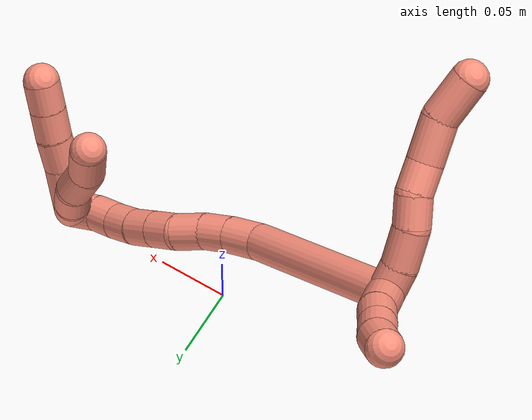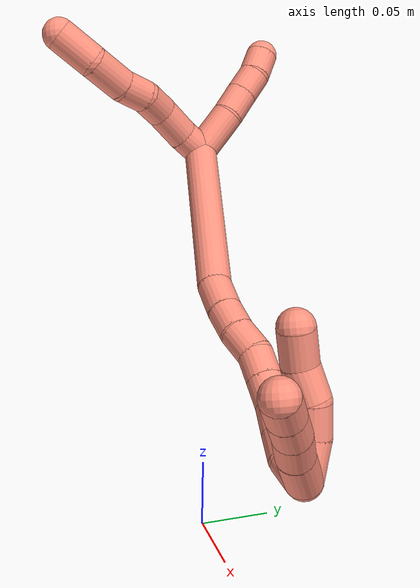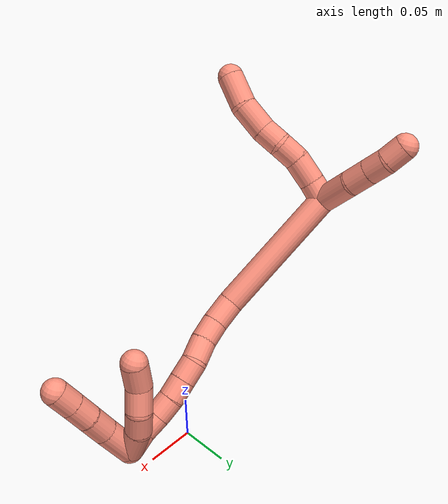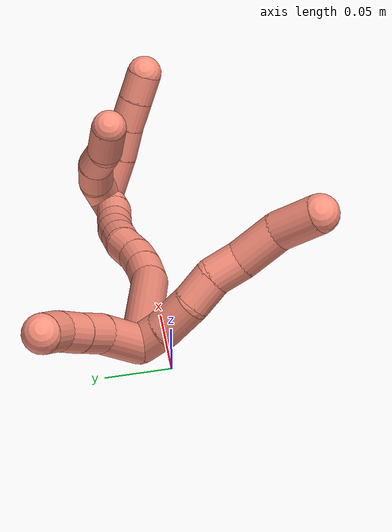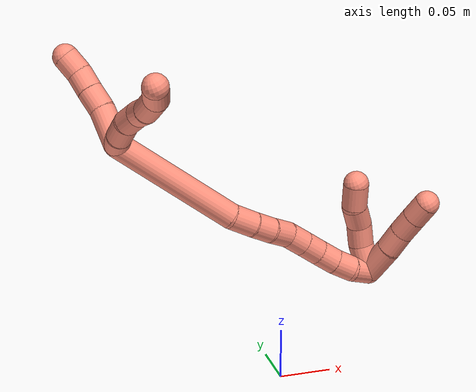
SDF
<sdf version="1.7">
 <world name="default">
  <model name="16">
   <static>0</static>
   <link name="16">
    <collision name="collision-cylinder-e_1_2_8">
     <pose>0.0026 -0.007364 0.006313 0.862083 0.261932 0.121003</pose>
     <geometry><cylinder><radius>0.0125</radius><length>0.020084</length></cylinder></geometry>
     <surface>
      <friction><ode><mu>1.16</mu><mu2>1.16</mu2><slip1>0</slip1><slip2>0</slip2></ode></friction>
      <contact><ode><kp>1e+06</kp><kd>1</kd><max_vel>0</max_vel><min_depth>0.001</min_depth></ode></contact>
     </surface>
    </collision>
    <visual name="visual-cylinder-e_1_2_8">
     <pose>0.0026 -0.007364 0.006313 0.862083 0.261932 0.121003</pose>
     <geometry><cylinder><radius>0.0125</radius><length>0.020084</length></cylinder></geometry>
     <material><ambient>1 0.576471 0.494118 1</ambient></material>
    </visual>
    <collision name="collision-cylinder-e_2_8_9">
     <pose>0.010747 -0.023678 0.020893 0.825067 0.427174 0.18928</pose>
     <geometry><cylinder><radius>0.0125</radius><length>0.026773</length></cylinder></geometry>
     <surface>
      <friction><ode><mu>1.16</mu><mu2>1.16</mu2><slip1>0</slip1><slip2>0</slip2></ode></friction>
      <contact><ode><kp>1e+06</kp><kd>1</kd><max_vel>0</max_vel><min_depth>0.001</min_depth></ode></contact>
     </surface>
    </collision>
    <visual name="visual-cylinder-e_2_8_9">
     <pose>0.010747 -0.023678 0.020893 0.825067 0.427174 0.18928</pose>
     <geometry><cylinder><radius>0.0125</radius><length>0.026773</length></cylinder></geometry>
     <material><ambient>1 0.576471 0.494118 1</ambient></material>
    </visual>
    <collision name="collision-cylinder-e_3_9_10">
     <pose>0.022775 -0.039786 0.03377 0.998518 0.650719 0.363871</pose>
     <geometry><cylinder><radius>0.0125</radius><length>0.021403</length></cylinder></geometry>
     <surface>
      <friction><ode><mu>1.16</mu><mu2>1.16</mu2><slip1>0</slip1><slip2>0</slip2></ode></friction>
      <contact><ode><kp>1e+06</kp><kd>1</kd><max_vel>0</max_vel><min_depth>0.001</min_depth></ode></contact>
     </surface>
    </collision>
    <visual name="visual-cylinder-e_3_9_10">
     <pose>0.022775 -0.039786 0.03377 0.998518 0.650719 0.363871</pose>
     <geometry><cylinder><radius>0.0125</radius><length>0.021403</length></cylinder></geometry>
     <material><ambient>1 0.576471 0.494118 1</ambient></material>
    </visual>
    <collision name="collision-cylinder-e_4_10_11">
     <pose>0.033046 -0.055957 0.042001 1.18894 0.371913 0.253012</pose>
     <geometry><cylinder><radius>0.0125</radius><length>0.02085</length></cylinder></geometry>
     <surface>
      <friction><ode><mu>1.16</mu><mu2>1.16</mu2><slip1>0</slip1><slip2>0</slip2></ode></friction>
      <contact><ode><kp>1e+06</kp><kd>1</kd><max_vel>0</max_vel><min_depth>0.001</min_depth></ode></contact>
     </surface>
    </collision>
    <visual name="visual-cylinder-e_4_10_11">
     <pose>0.033046 -0.055957 0.042001 1.18894 0.371913 0.253012</pose>
     <geometry><cylinder><radius>0.0125</radius><length>0.02085</length></cylinder></geometry>
     <material><ambient>1 0.576471 0.494118 1</ambient></material>
    </visual>
    <collision name="collision-cylinder-e_5_11_12">
     <pose>0.042619 -0.07619 0.0534 0.964562 0.400722 0.211841</pose>
     <geometry><cylinder><radius>0.0125</radius><length>0.029657</length></cylinder></geometry>
     <surface>
      <friction><ode><mu>1.16</mu><mu2>1.16</mu2><slip1>0</slip1><slip2>0</slip2></ode></friction>
      <contact><ode><kp>1e+06</kp><kd>1</kd><max_vel>0</max_vel><min_depth>0.001</min_depth></ode></contact>
     </surface>
    </collision>
    <visual name="visual-cylinder-e_5_11_12">
     <pose>0.042619 -0.07619 0.0534 0.964562 0.400722 0.211841</pose>
     <geometry><cylinder><radius>0.0125</radius><length>0.029657</length></cylinder></geometry>
     <material><ambient>1 0.576471 0.494118 1</ambient></material>
    </visual>
    <collision name="collision-cylinder-e_6_12_6">
     <pose>0.049766 -0.099215 0.071312 0.861419 0.087343 0.040152</pose>
     <geometry><cylinder><radius>0.0125</radius><length>0.031233</length></cylinder></geometry>
     <surface>
      <friction><ode><mu>1.16</mu><mu2>1.16</mu2><slip1>0</slip1><slip2>0</slip2></ode></friction>
      <contact><ode><kp>1e+06</kp><kd>1</kd><max_vel>0</max_vel><min_depth>0.001</min_depth></ode></contact>
     </surface>
    </collision>
    <visual name="visual-cylinder-e_6_12_6">
     <pose>0.049766 -0.099215 0.071312 0.861419 0.087343 0.040152</pose>
     <geometry><cylinder><radius>0.0125</radius><length>0.031233</length></cylinder></geometry>
     <material><ambient>1 0.576471 0.494118 1</ambient></material>
    </visual>
    <collision name="collision-cylinder-e_1_2_13">
     <pose>0.000875 0.012328 0.014022 -0.721212 0.046833 -0.017663</pose>
     <geometry><cylinder><radius>0.0125</radius><length>0.037383</length></cylinder></geometry>
     <surface>
      <friction><ode><mu>1.16</mu><mu2>1.16</mu2><slip1>0</slip1><slip2>0</slip2></ode></friction>
      <contact><ode><kp>1e+06</kp><kd>1</kd><max_vel>0</max_vel><min_depth>0.001</min_depth></ode></contact>
     </surface>
    </collision>
    <visual name="visual-cylinder-e_1_2_13">
     <pose>0.000875 0.012328 0.014022 -0.721212 0.046833 -0.017663</pose>
     <geometry><cylinder><radius>0.0125</radius><length>0.037383</length></cylinder></geometry>
     <material><ambient>1 0.576471 0.494118 1</ambient></material>
    </visual>
    <collision name="collision-cylinder-e_2_13_14">
     <pose>0.000264 0.031437 0.036651 -0.667245 -0.134782 0.046775</pose>
     <geometry><cylinder><radius>0.0125</radius><length>0.022113</length></cylinder></geometry>
     <surface>
      <friction><ode><mu>1.16</mu><mu2>1.16</mu2><slip1>0</slip1><slip2>0</slip2></ode></friction>
      <contact><ode><kp>1e+06</kp><kd>1</kd><max_vel>0</max_vel><min_depth>0.001</min_depth></ode></contact>
     </surface>
    </collision>
    <visual name="visual-cylinder-e_2_13_14">
     <pose>0.000264 0.031437 0.036651 -0.667245 -0.134782 0.046775</pose>
     <geometry><cylinder><radius>0.0125</radius><length>0.022113</length></cylinder></geometry>
     <material><ambient>1 0.576471 0.494118 1</ambient></material>
    </visual>
    <collision name="collision-cylinder-e_3_14_15">
     <pose>-0.002162 0.044583 0.05307 -0.68377 -0.093044 0.033131</pose>
     <geometry><cylinder><radius>0.0125</radius><length>0.020243</length></cylinder></geometry>
     <surface>
      <friction><ode><mu>1.16</mu><mu2>1.16</mu2><slip1>0</slip1><slip2>0</slip2></ode></friction>
      <contact><ode><kp>1e+06</kp><kd>1</kd><max_vel>0</max_vel><min_depth>0.001</min_depth></ode></contact>
     </surface>
    </collision>
    <visual name="visual-cylinder-e_3_14_15">
     <pose>-0.002162 0.044583 0.05307 -0.68377 -0.093044 0.033131</pose>
     <geometry><cylinder><radius>0.0125</radius><length>0.020243</length></cylinder></geometry>
     <material><ambient>1 0.576471 0.494118 1</ambient></material>
    </visual>
    <collision name="collision-cylinder-e_4_15_5">
     <pose>-0.005754 0.055601 0.069481 -0.495829 -0.264886 0.067418</pose>
     <geometry><cylinder><radius>0.0125</radius><length>0.02026</length></cylinder></geometry>
     <surface>
      <friction><ode><mu>1.16</mu><mu2>1.16</mu2><slip1>0</slip1><slip2>0</slip2></ode></friction>
      <contact><ode><kp>1e+06</kp><kd>1</kd><max_vel>0</max_vel><min_depth>0.001</min_depth></ode></contact>
     </surface>
    </collision>
    <visual name="visual-cylinder-e_4_15_5">
     <pose>-0.005754 0.055601 0.069481 -0.495829 -0.264886 0.067418</pose>
     <geometry><cylinder><radius>0.0125</radius><length>0.02026</length></cylinder></geometry>
     <material><ambient>1 0.576471 0.494118 1</ambient></material>
    </visual>
    <collision name="collision-cylinder-e_1_2_16">
     <pose>0.035076 -0.007607 -0.055396 3.00512 0.560256 2.67513</pose>
     <geometry><cylinder><radius>0.0125</radius><length>0.132013</length></cylinder></geometry>
     <surface>
      <friction><ode><mu>1.16</mu><mu2>1.16</mu2><slip1>0</slip1><slip2>0</slip2></ode></friction>
      <contact><ode><kp>1e+06</kp><kd>1</kd><max_vel>0</max_vel><min_depth>0.001</min_depth></ode></contact>
     </surface>
    </collision>
    <visual name="visual-cylinder-e_1_2_16">
     <pose>0.035076 -0.007607 -0.055396 3.00512 0.560256 2.67513</pose>
     <geometry><cylinder><radius>0.0125</radius><length>0.132013</length></cylinder></geometry>
     <material><ambient>1 0.576471 0.494118 1</ambient></material>
    </visual>
    <collision name="collision-cylinder-e_2_16_17">
     <pose>0.078229 -0.01426 -0.12019 -3.04042 0.707364 -2.86904</pose>
     <geometry><cylinder><radius>0.0125</radius><length>0.024858</length></cylinder></geometry>
     <surface>
      <friction><ode><mu>1.16</mu><mu2>1.16</mu2><slip1>0</slip1><slip2>0</slip2></ode></friction>
      <contact><ode><kp>1e+06</kp><kd>1</kd><max_vel>0</max_vel><min_depth>0.001</min_depth></ode></contact>
     </surface>
    </collision>
    <visual name="visual-cylinder-e_2_16_17">
     <pose>0.078229 -0.01426 -0.12019 -3.04042 0.707364 -2.86904</pose>
     <geometry><cylinder><radius>0.0125</radius><length>0.024858</length></cylinder></geometry>
     <material><ambient>1 0.576471 0.494118 1</ambient></material>
    </visual>
    <collision name="collision-cylinder-e_3_17_18">
     <pose>0.092995 -0.011396 -0.137294 -2.89858 0.700172 -2.49614</pose>
     <geometry><cylinder><radius>0.0125</radius><length>0.020761</length></cylinder></geometry>
     <surface>
      <friction><ode><mu>1.16</mu><mu2>1.16</mu2><slip1>0</slip1><slip2>0</slip2></ode></friction>
      <contact><ode><kp>1e+06</kp><kd>1</kd><max_vel>0</max_vel><min_depth>0.001</min_depth></ode></contact>
     </surface>
    </collision>
    <visual name="visual-cylinder-e_3_17_18">
     <pose>0.092995 -0.011396 -0.137294 -2.89858 0.700172 -2.49614</pose>
     <geometry><cylinder><radius>0.0125</radius><length>0.020761</length></cylinder></geometry>
     <material><ambient>1 0.576471 0.494118 1</ambient></material>
    </visual>
    <collision name="collision-cylinder-e_4_18_19">
     <pose>0.106505 -0.005633 -0.152931 -2.68946 0.658409 -1.95652</pose>
     <geometry><cylinder><radius>0.0125</radius><length>0.022297</length></cylinder></geometry>
     <surface>
      <friction><ode><mu>1.16</mu><mu2>1.16</mu2><slip1>0</slip1><slip2>0</slip2></ode></friction>
      <contact><ode><kp>1e+06</kp><kd>1</kd><max_vel>0</max_vel><min_depth>0.001</min_depth></ode></contact>
     </surface>
    </collision>
    <visual name="visual-cylinder-e_4_18_19">
     <pose>0.106505 -0.005633 -0.152931 -2.68946 0.658409 -1.95652</pose>
     <geometry><cylinder><radius>0.0125</radius><length>0.022297</length></cylinder></geometry>
     <material><ambient>1 0.576471 0.494118 1</ambient></material>
    </visual>
    <collision name="collision-cylinder-e_5_19_20">
     <pose>0.118642 -0.000894 -0.169312 -3.03703 0.559117 -2.78098</pose>
     <geometry><cylinder><radius>0.0125</radius><length>0.020043</length></cylinder></geometry>
     <surface>
      <friction><ode><mu>1.16</mu><mu2>1.16</mu2><slip1>0</slip1><slip2>0</slip2></ode></friction>
      <contact><ode><kp>1e+06</kp><kd>1</kd><max_vel>0</max_vel><min_depth>0.001</min_depth></ode></contact>
     </surface>
    </collision>
    <visual name="visual-cylinder-e_5_19_20">
     <pose>0.118642 -0.000894 -0.169312 -3.03703 0.559117 -2.78098</pose>
     <geometry><cylinder><radius>0.0125</radius><length>0.020043</length></cylinder></geometry>
     <material><ambient>1 0.576471 0.494118 1</ambient></material>
    </visual>
    <collision name="collision-cylinder-e_6_20_21">
     <pose>0.129173 0.000897 -0.186249 -3.03548 0.548489 -2.76844</pose>
     <geometry><cylinder><radius>0.0125</radius><length>0.020006</length></cylinder></geometry>
     <surface>
      <friction><ode><mu>1.16</mu><mu2>1.16</mu2><slip1>0</slip1><slip2>0</slip2></ode></friction>
      <contact><ode><kp>1e+06</kp><kd>1</kd><max_vel>0</max_vel><min_depth>0.001</min_depth></ode></contact>
     </surface>
    </collision>
    <visual name="visual-cylinder-e_6_20_21">
     <pose>0.129173 0.000897 -0.186249 -3.03548 0.548489 -2.76844</pose>
     <geometry><cylinder><radius>0.0125</radius><length>0.020006</length></cylinder></geometry>
     <material><ambient>1 0.576471 0.494118 1</ambient></material>
    </visual>
    <collision name="collision-cylinder-e_7_21_22">
     <pose>0.139935 0.00144 -0.203054 3.09831 0.587729 2.99878</pose>
     <geometry><cylinder><radius>0.0125</radius><length>0.020008</length></cylinder></geometry>
     <surface>
      <friction><ode><mu>1.16</mu><mu2>1.16</mu2><slip1>0</slip1><slip2>0</slip2></ode></friction>
      <contact><ode><kp>1e+06</kp><kd>1</kd><max_vel>0</max_vel><min_depth>0.001</min_depth></ode></contact>
     </surface>
    </collision>
    <visual name="visual-cylinder-e_7_21_22">
     <pose>0.139935 0.00144 -0.203054 3.09831 0.587729 2.99878</pose>
     <geometry><cylinder><radius>0.0125</radius><length>0.020008</length></cylinder></geometry>
     <material><ambient>1 0.576471 0.494118 1</ambient></material>
    </visual>
    <collision name="collision-cylinder-e_8_22_23">
     <pose>0.151973 0.000641 -0.218973 3.08391 0.705895 2.98529</pose>
     <geometry><cylinder><radius>0.0125</radius><length>0.02001</length></cylinder></geometry>
     <surface>
      <friction><ode><mu>1.16</mu><mu2>1.16</mu2><slip1>0</slip1><slip2>0</slip2></ode></friction>
      <contact><ode><kp>1e+06</kp><kd>1</kd><max_vel>0</max_vel><min_depth>0.001</min_depth></ode></contact>
     </surface>
    </collision>
    <visual name="visual-cylinder-e_8_22_23">
     <pose>0.151973 0.000641 -0.218973 3.08391 0.705895 2.98529</pose>
     <geometry><cylinder><radius>0.0125</radius><length>0.02001</length></cylinder></geometry>
     <material><ambient>1 0.576471 0.494118 1</ambient></material>
    </visual>
    <collision name="collision-cylinder-e_9_23_1">
     <pose>0.165824 0.00265 -0.232888 -2.7718 0.827089 -2.33583</pose>
     <geometry><cylinder><radius>0.0125</radius><length>0.020004</length></cylinder></geometry>
     <surface>
      <friction><ode><mu>1.16</mu><mu2>1.16</mu2><slip1>0</slip1><slip2>0</slip2></ode></friction>
      <contact><ode><kp>1e+06</kp><kd>1</kd><max_vel>0</max_vel><min_depth>0.001</min_depth></ode></contact>
     </surface>
    </collision>
    <visual name="visual-cylinder-e_9_23_1">
     <pose>0.165824 0.00265 -0.232888 -2.7718 0.827089 -2.33583</pose>
     <geometry><cylinder><radius>0.0125</radius><length>0.020004</length></cylinder></geometry>
     <material><ambient>1 0.576471 0.494118 1</ambient></material>
    </visual>
    <collision name="collision-cylinder-e_1_1_24">
     <pose>0.175142 0.008562 -0.225571 -0.248949 0.138276 -0.017328</pose>
     <geometry><cylinder><radius>0.0125</radius><length>0.0284</length></cylinder></geometry>
     <surface>
      <friction><ode><mu>1.16</mu><mu2>1.16</mu2><slip1>0</slip1><slip2>0</slip2></ode></friction>
      <contact><ode><kp>1e+06</kp><kd>1</kd><max_vel>0</max_vel><min_depth>0.001</min_depth></ode></contact>
     </surface>
    </collision>
    <visual name="visual-cylinder-e_1_1_24">
     <pose>0.175142 0.008562 -0.225571 -0.248949 0.138276 -0.017328</pose>
     <geometry><cylinder><radius>0.0125</radius><length>0.0284</length></cylinder></geometry>
     <material><ambient>1 0.576471 0.494118 1</ambient></material>
    </visual>
    <collision name="collision-cylinder-e_2_24_25">
     <pose>0.18009 0.011971 -0.201062 0.005228 0.268227 0.000705</pose>
     <geometry><cylinder><radius>0.0125</radius><length>0.022563</length></cylinder></geometry>
     <surface>
      <friction><ode><mu>1.16</mu><mu2>1.16</mu2><slip1>0</slip1><slip2>0</slip2></ode></friction>
      <contact><ode><kp>1e+06</kp><kd>1</kd><max_vel>0</max_vel><min_depth>0.001</min_depth></ode></contact>
     </surface>
    </collision>
    <visual name="visual-cylinder-e_2_24_25">
     <pose>0.18009 0.011971 -0.201062 0.005228 0.268227 0.000705</pose>
     <geometry><cylinder><radius>0.0125</radius><length>0.022563</length></cylinder></geometry>
     <material><ambient>1 0.576471 0.494118 1</ambient></material>
    </visual>
    <collision name="collision-cylinder-e_3_25_26">
     <pose>0.183851 0.00866 -0.178883 0.280389 0.06556 0.009255</pose>
     <geometry><cylinder><radius>0.0125</radius><length>0.023571</length></cylinder></geometry>
     <surface>
      <friction><ode><mu>1.16</mu><mu2>1.16</mu2><slip1>0</slip1><slip2>0</slip2></ode></friction>
      <contact><ode><kp>1e+06</kp><kd>1</kd><max_vel>0</max_vel><min_depth>0.001</min_depth></ode></contact>
     </surface>
    </collision>
    <visual name="visual-cylinder-e_3_25_26">
     <pose>0.183851 0.00866 -0.178883 0.280389 0.06556 0.009255</pose>
     <geometry><cylinder><radius>0.0125</radius><length>0.023571</length></cylinder></geometry>
     <material><ambient>1 0.576471 0.494118 1</ambient></material>
    </visual>
    <collision name="collision-cylinder-e_4_26_4">
     <pose>0.18945 0.003568 -0.155943 0.156527 0.388792 0.030878</pose>
     <geometry><cylinder><radius>0.0125</radius><length>0.025466</length></cylinder></geometry>
     <surface>
      <friction><ode><mu>1.16</mu><mu2>1.16</mu2><slip1>0</slip1><slip2>0</slip2></ode></friction>
      <contact><ode><kp>1e+06</kp><kd>1</kd><max_vel>0</max_vel><min_depth>0.001</min_depth></ode></contact>
     </surface>
    </collision>
    <visual name="visual-cylinder-e_4_26_4">
     <pose>0.18945 0.003568 -0.155943 0.156527 0.388792 0.030878</pose>
     <geometry><cylinder><radius>0.0125</radius><length>0.025466</length></cylinder></geometry>
     <material><ambient>1 0.576471 0.494118 1</ambient></material>
    </visual>
    <collision name="collision-cylinder-e_1_1_27">
     <pose>0.185804 -0.001018 -0.22943 0.559161 0.830598 0.251851</pose>
     <geometry><cylinder><radius>0.0125</radius><length>0.034183</length></cylinder></geometry>
     <surface>
      <friction><ode><mu>1.16</mu><mu2>1.16</mu2><slip1>0</slip1><slip2>0</slip2></ode></friction>
      <contact><ode><kp>1e+06</kp><kd>1</kd><max_vel>0</max_vel><min_depth>0.001</min_depth></ode></contact>
     </surface>
    </collision>
    <visual name="visual-cylinder-e_1_1_27">
     <pose>0.185804 -0.001018 -0.22943 0.559161 0.830598 0.251851</pose>
     <geometry><cylinder><radius>0.0125</radius><length>0.034183</length></cylinder></geometry>
     <material><ambient>1 0.576471 0.494118 1</ambient></material>
    </visual>
    <collision name="collision-cylinder-e_2_27_28">
     <pose>0.207061 -0.010315 -0.212552 0.421006 0.837148 0.189537</pose>
     <geometry><cylinder><radius>0.0125</radius><length>0.02326</length></cylinder></geometry>
     <surface>
      <friction><ode><mu>1.16</mu><mu2>1.16</mu2><slip1>0</slip1><slip2>0</slip2></ode></friction>
      <contact><ode><kp>1e+06</kp><kd>1</kd><max_vel>0</max_vel><min_depth>0.001</min_depth></ode></contact>
     </surface>
    </collision>
    <visual name="visual-cylinder-e_2_27_28">
     <pose>0.207061 -0.010315 -0.212552 0.421006 0.837148 0.189537</pose>
     <geometry><cylinder><radius>0.0125</radius><length>0.02326</length></cylinder></geometry>
     <material><ambient>1 0.576471 0.494118 1</ambient></material>
    </visual>
    <collision name="collision-cylinder-e_3_28_29">
     <pose>0.223569 -0.017351 -0.199101 0.545979 0.814644 0.24043</pose>
     <geometry><cylinder><radius>0.0125</radius><length>0.021634</length></cylinder></geometry>
     <surface>
      <friction><ode><mu>1.16</mu><mu2>1.16</mu2><slip1>0</slip1><slip2>0</slip2></ode></friction>
      <contact><ode><kp>1e+06</kp><kd>1</kd><max_vel>0</max_vel><min_depth>0.001</min_depth></ode></contact>
     </surface>
    </collision>
    <visual name="visual-cylinder-e_3_28_29">
     <pose>0.223569 -0.017351 -0.199101 0.545979 0.814644 0.24043</pose>
     <geometry><cylinder><radius>0.0125</radius><length>0.021634</length></cylinder></geometry>
     <material><ambient>1 0.576471 0.494118 1</ambient></material>
    </visual>
    <collision name="collision-cylinder-e_4_29_3">
     <pose>0.239137 -0.024915 -0.186725 0.551345 0.827083 0.247014</pose>
     <geometry><cylinder><radius>0.0125</radius><length>0.020923</length></cylinder></geometry>
     <surface>
      <friction><ode><mu>1.16</mu><mu2>1.16</mu2><slip1>0</slip1><slip2>0</slip2></ode></friction>
      <contact><ode><kp>1e+06</kp><kd>1</kd><max_vel>0</max_vel><min_depth>0.001</min_depth></ode></contact>
     </surface>
    </collision>
    <visual name="visual-cylinder-e_4_29_3">
     <pose>0.239137 -0.024915 -0.186725 0.551345 0.827083 0.247014</pose>
     <geometry><cylinder><radius>0.0125</radius><length>0.020923</length></cylinder></geometry>
     <material><ambient>1 0.576471 0.494118 1</ambient></material>
    </visual>
    <collision name="collision-sphere-3">
     <pose>0.246836 -0.028626 -0.180692 0 -0 0</pose>
     <geometry><sphere><radius>0.0125</radius></sphere></geometry>
     <surface>
      <friction><ode><mu>1.16</mu><mu2>1.16</mu2><slip1>0</slip1><slip2>0</slip2></ode></friction>
      <contact><ode><kp>1e+06</kp><kd>1</kd><max_vel>0</max_vel><min_depth>0.001</min_depth></ode></contact>
     </surface>
    </collision>
    <visual name="visual-sphere-3">
     <pose>0.246836 -0.028626 -0.180692 0 -0 0</pose>
     <geometry><sphere><radius>0.0125</radius></sphere></geometry>
     <material><ambient>1 0.576471 0.494118 1</ambient></material>
    </visual>
    <collision name="collision-sphere-29">
     <pose>0.231438 -0.021205 -0.192759 0 -0 0</pose>
     <geometry><sphere><radius>0.0125</radius></sphere></geometry>
     <surface>
      <friction><ode><mu>1.16</mu><mu2>1.16</mu2><slip1>0</slip1><slip2>0</slip2></ode></friction>
      <contact><ode><kp>1e+06</kp><kd>1</kd><max_vel>0</max_vel><min_depth>0.001</min_depth></ode></contact>
     </surface>
    </collision>
    <visual name="visual-sphere-29">
     <pose>0.231438 -0.021205 -0.192759 0 -0 0</pose>
     <geometry><sphere><radius>0.0125</radius></sphere></geometry>
     <material><ambient>1 0.576471 0.494118 1</ambient></material>
    </visual>
    <collision name="collision-sphere-28">
     <pose>0.215699 -0.013497 -0.205444 0 -0 0</pose>
     <geometry><sphere><radius>0.0125</radius></sphere></geometry>
     <surface>
      <friction><ode><mu>1.16</mu><mu2>1.16</mu2><slip1>0</slip1><slip2>0</slip2></ode></friction>
      <contact><ode><kp>1e+06</kp><kd>1</kd><max_vel>0</max_vel><min_depth>0.001</min_depth></ode></contact>
     </surface>
    </collision>
    <visual name="visual-sphere-28">
     <pose>0.215699 -0.013497 -0.205444 0 -0 0</pose>
     <geometry><sphere><radius>0.0125</radius></sphere></geometry>
     <material><ambient>1 0.576471 0.494118 1</ambient></material>
    </visual>
    <collision name="collision-sphere-27">
     <pose>0.198424 -0.007133 -0.219659 0 -0 0</pose>
     <geometry><sphere><radius>0.0125</radius></sphere></geometry>
     <surface>
      <friction><ode><mu>1.16</mu><mu2>1.16</mu2><slip1>0</slip1><slip2>0</slip2></ode></friction>
      <contact><ode><kp>1e+06</kp><kd>1</kd><max_vel>0</max_vel><min_depth>0.001</min_depth></ode></contact>
     </surface>
    </collision>
    <visual name="visual-sphere-27">
     <pose>0.198424 -0.007133 -0.219659 0 -0 0</pose>
     <geometry><sphere><radius>0.0125</radius></sphere></geometry>
     <material><ambient>1 0.576471 0.494118 1</ambient></material>
    </visual>
    <collision name="collision-sphere-4">
     <pose>0.194277 0.001732 -0.144305 0 -0 0</pose>
     <geometry><sphere><radius>0.0125</radius></sphere></geometry>
     <surface>
      <friction><ode><mu>1.16</mu><mu2>1.16</mu2><slip1>0</slip1><slip2>0</slip2></ode></friction>
      <contact><ode><kp>1e+06</kp><kd>1</kd><max_vel>0</max_vel><min_depth>0.001</min_depth></ode></contact>
     </surface>
    </collision>
    <visual name="visual-sphere-4">
     <pose>0.194277 0.001732 -0.144305 0 -0 0</pose>
     <geometry><sphere><radius>0.0125</radius></sphere></geometry>
     <material><ambient>1 0.576471 0.494118 1</ambient></material>
    </visual>
    <collision name="collision-sphere-26">
     <pose>0.184624 0.005405 -0.167582 0 -0 0</pose>
     <geometry><sphere><radius>0.0125</radius></sphere></geometry>
     <surface>
      <friction><ode><mu>1.16</mu><mu2>1.16</mu2><slip1>0</slip1><slip2>0</slip2></ode></friction>
      <contact><ode><kp>1e+06</kp><kd>1</kd><max_vel>0</max_vel><min_depth>0.001</min_depth></ode></contact>
     </surface>
    </collision>
    <visual name="visual-sphere-26">
     <pose>0.184624 0.005405 -0.167582 0 -0 0</pose>
     <geometry><sphere><radius>0.0125</radius></sphere></geometry>
     <material><ambient>1 0.576471 0.494118 1</ambient></material>
    </visual>
    <collision name="collision-sphere-25">
     <pose>0.183079 0.011914 -0.190184 0 -0 0</pose>
     <geometry><sphere><radius>0.0125</radius></sphere></geometry>
     <surface>
      <friction><ode><mu>1.16</mu><mu2>1.16</mu2><slip1>0</slip1><slip2>0</slip2></ode></friction>
      <contact><ode><kp>1e+06</kp><kd>1</kd><max_vel>0</max_vel><min_depth>0.001</min_depth></ode></contact>
     </surface>
    </collision>
    <visual name="visual-sphere-25">
     <pose>0.183079 0.011914 -0.190184 0 -0 0</pose>
     <geometry><sphere><radius>0.0125</radius></sphere></geometry>
     <material><ambient>1 0.576471 0.494118 1</ambient></material>
    </visual>
    <collision name="collision-sphere-24">
     <pose>0.1771 0.012028 -0.21194 0 -0 0</pose>
     <geometry><sphere><radius>0.0125</radius></sphere></geometry>
     <surface>
      <friction><ode><mu>1.16</mu><mu2>1.16</mu2><slip1>0</slip1><slip2>0</slip2></ode></friction>
      <contact><ode><kp>1e+06</kp><kd>1</kd><max_vel>0</max_vel><min_depth>0.001</min_depth></ode></contact>
     </surface>
    </collision>
    <visual name="visual-sphere-24">
     <pose>0.1771 0.012028 -0.21194 0 -0 0</pose>
     <geometry><sphere><radius>0.0125</radius></sphere></geometry>
     <material><ambient>1 0.576471 0.494118 1</ambient></material>
    </visual>
    <collision name="collision-sphere-1">
     <pose>0.173185 0.005097 -0.239202 0 -0 0</pose>
     <geometry><sphere><radius>0.0125</radius></sphere></geometry>
     <surface>
      <friction><ode><mu>1.16</mu><mu2>1.16</mu2><slip1>0</slip1><slip2>0</slip2></ode></friction>
      <contact><ode><kp>1e+06</kp><kd>1</kd><max_vel>0</max_vel><min_depth>0.001</min_depth></ode></contact>
     </surface>
    </collision>
    <visual name="visual-sphere-1">
     <pose>0.173185 0.005097 -0.239202 0 -0 0</pose>
     <geometry><sphere><radius>0.0125</radius></sphere></geometry>
     <material><ambient>1 0.576471 0.494118 1</ambient></material>
    </visual>
    <collision name="collision-sphere-23">
     <pose>0.158463 0.000202 -0.226574 0 -0 0</pose>
     <geometry><sphere><radius>0.0125</radius></sphere></geometry>
     <surface>
      <friction><ode><mu>1.16</mu><mu2>1.16</mu2><slip1>0</slip1><slip2>0</slip2></ode></friction>
      <contact><ode><kp>1e+06</kp><kd>1</kd><max_vel>0</max_vel><min_depth>0.001</min_depth></ode></contact>
     </surface>
    </collision>
    <visual name="visual-sphere-23">
     <pose>0.158463 0.000202 -0.226574 0 -0 0</pose>
     <geometry><sphere><radius>0.0125</radius></sphere></geometry>
     <material><ambient>1 0.576471 0.494118 1</ambient></material>
    </visual>
    <collision name="collision-sphere-22">
     <pose>0.145482 0.00108 -0.211371 0 -0 0</pose>
     <geometry><sphere><radius>0.0125</radius></sphere></geometry>
     <surface>
      <friction><ode><mu>1.16</mu><mu2>1.16</mu2><slip1>0</slip1><slip2>0</slip2></ode></friction>
      <contact><ode><kp>1e+06</kp><kd>1</kd><max_vel>0</max_vel><min_depth>0.001</min_depth></ode></contact>
     </surface>
    </collision>
    <visual name="visual-sphere-22">
     <pose>0.145482 0.00108 -0.211371 0 -0 0</pose>
     <geometry><sphere><radius>0.0125</radius></sphere></geometry>
     <material><ambient>1 0.576471 0.494118 1</ambient></material>
    </visual>
    <collision name="collision-sphere-21">
     <pose>0.134388 0.001801 -0.194736 0 -0 0</pose>
     <geometry><sphere><radius>0.0125</radius></sphere></geometry>
     <surface>
      <friction><ode><mu>1.16</mu><mu2>1.16</mu2><slip1>0</slip1><slip2>0</slip2></ode></friction>
      <contact><ode><kp>1e+06</kp><kd>1</kd><max_vel>0</max_vel><min_depth>0.001</min_depth></ode></contact>
     </surface>
    </collision>
    <visual name="visual-sphere-21">
     <pose>0.134388 0.001801 -0.194736 0 -0 0</pose>
     <geometry><sphere><radius>0.0125</radius></sphere></geometry>
     <material><ambient>1 0.576471 0.494118 1</ambient></material>
    </visual>
    <collision name="collision-sphere-12">
     <pose>0.048404 -0.087411 0.061179 0 -0 0</pose>
     <geometry><sphere><radius>0.0125</radius></sphere></geometry>
     <surface>
      <friction><ode><mu>1.16</mu><mu2>1.16</mu2><slip1>0</slip1><slip2>0</slip2></ode></friction>
      <contact><ode><kp>1e+06</kp><kd>1</kd><max_vel>0</max_vel><min_depth>0.001</min_depth></ode></contact>
     </surface>
    </collision>
    <visual name="visual-sphere-12">
     <pose>0.048404 -0.087411 0.061179 0 -0 0</pose>
     <geometry><sphere><radius>0.0125</radius></sphere></geometry>
     <material><ambient>1 0.576471 0.494118 1</ambient></material>
    </visual>
    <collision name="collision-sphere-11">
     <pose>0.036835 -0.06497 0.04562 0 -0 0</pose>
     <geometry><sphere><radius>0.0125</radius></sphere></geometry>
     <surface>
      <friction><ode><mu>1.16</mu><mu2>1.16</mu2><slip1>0</slip1><slip2>0</slip2></ode></friction>
      <contact><ode><kp>1e+06</kp><kd>1</kd><max_vel>0</max_vel><min_depth>0.001</min_depth></ode></contact>
     </surface>
    </collision>
    <visual name="visual-sphere-11">
     <pose>0.036835 -0.06497 0.04562 0 -0 0</pose>
     <geometry><sphere><radius>0.0125</radius></sphere></geometry>
     <material><ambient>1 0.576471 0.494118 1</ambient></material>
    </visual>
    <collision name="collision-sphere-10">
     <pose>0.029258 -0.046944 0.038382 0 -0 0</pose>
     <geometry><sphere><radius>0.0125</radius></sphere></geometry>
     <surface>
      <friction><ode><mu>1.16</mu><mu2>1.16</mu2><slip1>0</slip1><slip2>0</slip2></ode></friction>
      <contact><ode><kp>1e+06</kp><kd>1</kd><max_vel>0</max_vel><min_depth>0.001</min_depth></ode></contact>
     </surface>
    </collision>
    <visual name="visual-sphere-10">
     <pose>0.029258 -0.046944 0.038382 0 -0 0</pose>
     <geometry><sphere><radius>0.0125</radius></sphere></geometry>
     <material><ambient>1 0.576471 0.494118 1</ambient></material>
    </visual>
    <collision name="collision-sphere-9">
     <pose>0.016293 -0.032628 0.029159 0 -0 0</pose>
     <geometry><sphere><radius>0.0125</radius></sphere></geometry>
     <surface>
      <friction><ode><mu>1.16</mu><mu2>1.16</mu2><slip1>0</slip1><slip2>0</slip2></ode></friction>
      <contact><ode><kp>1e+06</kp><kd>1</kd><max_vel>0</max_vel><min_depth>0.001</min_depth></ode></contact>
     </surface>
    </collision>
    <visual name="visual-sphere-9">
     <pose>0.016293 -0.032628 0.029159 0 -0 0</pose>
     <geometry><sphere><radius>0.0125</radius></sphere></geometry>
     <material><ambient>1 0.576471 0.494118 1</ambient></material>
    </visual>
    <collision name="collision-sphere-2">
     <geometry><sphere><radius>0.0125</radius></sphere></geometry>
     <surface>
      <friction><ode><mu>1.16</mu><mu2>1.16</mu2><slip1>0</slip1><slip2>0</slip2></ode></friction>
      <contact><ode><kp>1e+06</kp><kd>1</kd><max_vel>0</max_vel><min_depth>0.001</min_depth></ode></contact>
     </surface>
    </collision>
    <visual name="visual-sphere-2">
     <geometry><sphere><radius>0.0125</radius></sphere></geometry>
     <material><ambient>1 0.576471 0.494118 1</ambient></material>
    </visual>
    <collision name="collision-sphere-19">
     <pose>0.113326 -0.001781 -0.160863 0 -0 0</pose>
     <geometry><sphere><radius>0.0125</radius></sphere></geometry>
     <surface>
      <friction><ode><mu>1.16</mu><mu2>1.16</mu2><slip1>0</slip1><slip2>0</slip2></ode></friction>
      <contact><ode><kp>1e+06</kp><kd>1</kd><max_vel>0</max_vel><min_depth>0.001</min_depth></ode></contact>
     </surface>
    </collision>
    <visual name="visual-sphere-19">
     <pose>0.113326 -0.001781 -0.160863 0 -0 0</pose>
     <geometry><sphere><radius>0.0125</radius></sphere></geometry>
     <material><ambient>1 0.576471 0.494118 1</ambient></material>
    </visual>
    <collision name="collision-sphere-8">
     <pose>0.005201 -0.014728 0.012626 0 -0 0</pose>
     <geometry><sphere><radius>0.0125</radius></sphere></geometry>
     <surface>
      <friction><ode><mu>1.16</mu><mu2>1.16</mu2><slip1>0</slip1><slip2>0</slip2></ode></friction>
      <contact><ode><kp>1e+06</kp><kd>1</kd><max_vel>0</max_vel><min_depth>0.001</min_depth></ode></contact>
     </surface>
    </collision>
    <visual name="visual-sphere-8">
     <pose>0.005201 -0.014728 0.012626 0 -0 0</pose>
     <geometry><sphere><radius>0.0125</radius></sphere></geometry>
     <material><ambient>1 0.576471 0.494118 1</ambient></material>
    </visual>
    <collision name="collision-sphere-6">
     <pose>0.051128 -0.111019 0.081445 0 -0 0</pose>
     <geometry><sphere><radius>0.0125</radius></sphere></geometry>
     <surface>
      <friction><ode><mu>1.16</mu><mu2>1.16</mu2><slip1>0</slip1><slip2>0</slip2></ode></friction>
      <contact><ode><kp>1e+06</kp><kd>1</kd><max_vel>0</max_vel><min_depth>0.001</min_depth></ode></contact>
     </surface>
    </collision>
    <visual name="visual-sphere-6">
     <pose>0.051128 -0.111019 0.081445 0 -0 0</pose>
     <geometry><sphere><radius>0.0125</radius></sphere></geometry>
     <material><ambient>1 0.576471 0.494118 1</ambient></material>
    </visual>
    <collision name="collision-sphere-13">
     <pose>0.00175 0.024657 0.028044 0 -0 0</pose>
     <geometry><sphere><radius>0.0125</radius></sphere></geometry>
     <surface>
      <friction><ode><mu>1.16</mu><mu2>1.16</mu2><slip1>0</slip1><slip2>0</slip2></ode></friction>
      <contact><ode><kp>1e+06</kp><kd>1</kd><max_vel>0</max_vel><min_depth>0.001</min_depth></ode></contact>
     </surface>
    </collision>
    <visual name="visual-sphere-13">
     <pose>0.00175 0.024657 0.028044 0 -0 0</pose>
     <geometry><sphere><radius>0.0125</radius></sphere></geometry>
     <material><ambient>1 0.576471 0.494118 1</ambient></material>
    </visual>
    <collision name="collision-sphere-14">
     <pose>-0.001221 0.038217 0.045257 0 -0 0</pose>
     <geometry><sphere><radius>0.0125</radius></sphere></geometry>
     <surface>
      <friction><ode><mu>1.16</mu><mu2>1.16</mu2><slip1>0</slip1><slip2>0</slip2></ode></friction>
      <contact><ode><kp>1e+06</kp><kd>1</kd><max_vel>0</max_vel><min_depth>0.001</min_depth></ode></contact>
     </surface>
    </collision>
    <visual name="visual-sphere-14">
     <pose>-0.001221 0.038217 0.045257 0 -0 0</pose>
     <geometry><sphere><radius>0.0125</radius></sphere></geometry>
     <material><ambient>1 0.576471 0.494118 1</ambient></material>
    </visual>
    <collision name="collision-sphere-15">
     <pose>-0.003102 0.05095 0.060882 0 -0 0</pose>
     <geometry><sphere><radius>0.0125</radius></sphere></geometry>
     <surface>
      <friction><ode><mu>1.16</mu><mu2>1.16</mu2><slip1>0</slip1><slip2>0</slip2></ode></friction>
      <contact><ode><kp>1e+06</kp><kd>1</kd><max_vel>0</max_vel><min_depth>0.001</min_depth></ode></contact>
     </surface>
    </collision>
    <visual name="visual-sphere-15">
     <pose>-0.003102 0.05095 0.060882 0 -0 0</pose>
     <geometry><sphere><radius>0.0125</radius></sphere></geometry>
     <material><ambient>1 0.576471 0.494118 1</ambient></material>
    </visual>
    <collision name="collision-sphere-5">
     <pose>-0.008406 0.060253 0.078081 0 -0 0</pose>
     <geometry><sphere><radius>0.0125</radius></sphere></geometry>
     <surface>
      <friction><ode><mu>1.16</mu><mu2>1.16</mu2><slip1>0</slip1><slip2>0</slip2></ode></friction>
      <contact><ode><kp>1e+06</kp><kd>1</kd><max_vel>0</max_vel><min_depth>0.001</min_depth></ode></contact>
     </surface>
    </collision>
    <visual name="visual-sphere-5">
     <pose>-0.008406 0.060253 0.078081 0 -0 0</pose>
     <geometry><sphere><radius>0.0125</radius></sphere></geometry>
     <material><ambient>1 0.576471 0.494118 1</ambient></material>
    </visual>
    <collision name="collision-sphere-16">
     <pose>0.070152 -0.015214 -0.110791 0 -0 0</pose>
     <geometry><sphere><radius>0.0125</radius></sphere></geometry>
     <surface>
      <friction><ode><mu>1.16</mu><mu2>1.16</mu2><slip1>0</slip1><slip2>0</slip2></ode></friction>
      <contact><ode><kp>1e+06</kp><kd>1</kd><max_vel>0</max_vel><min_depth>0.001</min_depth></ode></contact>
     </surface>
    </collision>
    <visual name="visual-sphere-16">
     <pose>0.070152 -0.015214 -0.110791 0 -0 0</pose>
     <geometry><sphere><radius>0.0125</radius></sphere></geometry>
     <material><ambient>1 0.576471 0.494118 1</ambient></material>
    </visual>
    <collision name="collision-sphere-17">
     <pose>0.086306 -0.013306 -0.129589 0 -0 0</pose>
     <geometry><sphere><radius>0.0125</radius></sphere></geometry>
     <surface>
      <friction><ode><mu>1.16</mu><mu2>1.16</mu2><slip1>0</slip1><slip2>0</slip2></ode></friction>
      <contact><ode><kp>1e+06</kp><kd>1</kd><max_vel>0</max_vel><min_depth>0.001</min_depth></ode></contact>
     </surface>
    </collision>
    <visual name="visual-sphere-17">
     <pose>0.086306 -0.013306 -0.129589 0 -0 0</pose>
     <geometry><sphere><radius>0.0125</radius></sphere></geometry>
     <material><ambient>1 0.576471 0.494118 1</ambient></material>
    </visual>
    <collision name="collision-sphere-18">
     <pose>0.099683 -0.009486 -0.144999 0 -0 0</pose>
     <geometry><sphere><radius>0.0125</radius></sphere></geometry>
     <surface>
      <friction><ode><mu>1.16</mu><mu2>1.16</mu2><slip1>0</slip1><slip2>0</slip2></ode></friction>
      <contact><ode><kp>1e+06</kp><kd>1</kd><max_vel>0</max_vel><min_depth>0.001</min_depth></ode></contact>
     </surface>
    </collision>
    <visual name="visual-sphere-18">
     <pose>0.099683 -0.009486 -0.144999 0 -0 0</pose>
     <geometry><sphere><radius>0.0125</radius></sphere></geometry>
     <material><ambient>1 0.576471 0.494118 1</ambient></material>
    </visual>
    <collision name="collision-sphere-20">
     <pose>0.123957 -7e-06 -0.177761 0 -0 0</pose>
     <geometry><sphere><radius>0.0125</radius></sphere></geometry>
     <surface>
      <friction><ode><mu>1.16</mu><mu2>1.16</mu2><slip1>0</slip1><slip2>0</slip2></ode></friction>
      <contact><ode><kp>1e+06</kp><kd>1</kd><max_vel>0</max_vel><min_depth>0.001</min_depth></ode></contact>
     </surface>
    </collision>
    <visual name="visual-sphere-20">
     <pose>0.123957 -7e-06 -0.177761 0 -0 0</pose>
     <geometry><sphere><radius>0.0125</radius></sphere></geometry>
     <material><ambient>1 0.576471 0.494118 1</ambient></material>
    </visual>
    <inertial>
     <pose>0.091222 -0.009284 -0.089337 0 -0 0</pose>
     <mass>0.75</mass>
     <inertia>
      <ixx>-1.9e-05</ixx>
      <ixy>0</ixy>
      <ixz>0</ixz>
      <iyy>0.000297</iyy>
      <iyz>0</iyz>
      <izz>-9.1e-05</izz>
     </inertia>
    </inertial>
   </link>
   <pose>-0.148641 0.044084 0.243495 0.002081 -0.380745 -0.069186</pose>
  </model>
 </world>
</sdf>
